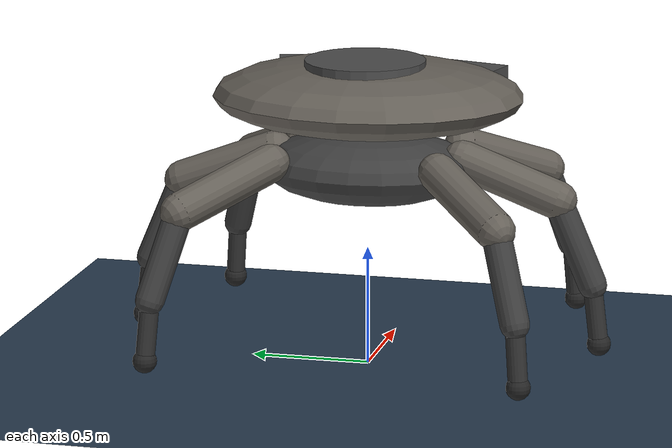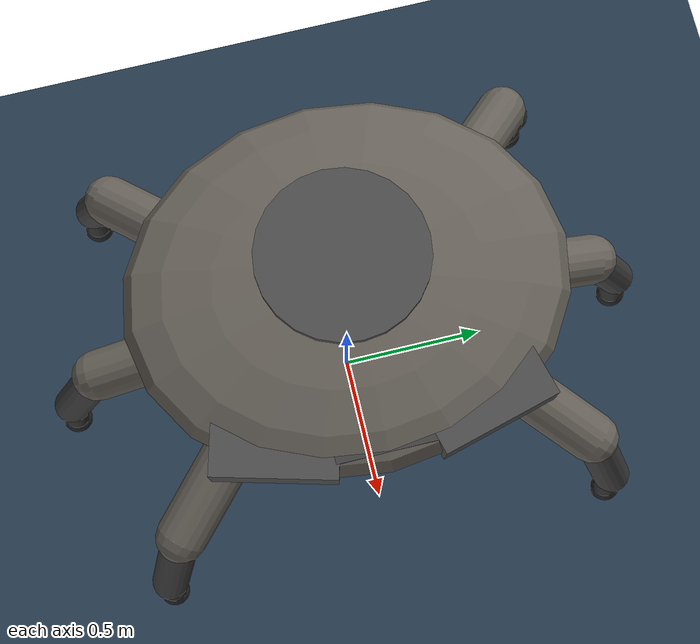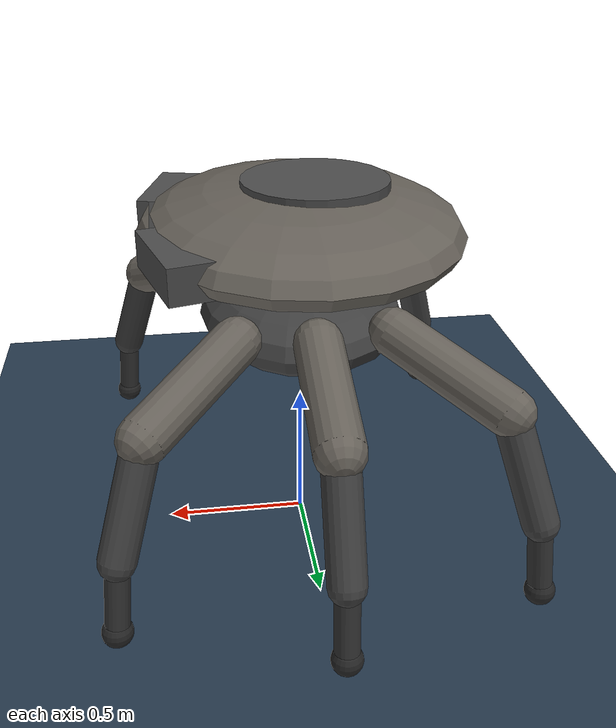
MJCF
<mujoco model="queen">
  <compiler angle="degree" coordinate="local" inertiafromgeom="true"/>

  <option integrator="implicitfast" timestep="0.002" solver="Newton" iterations="200">
    <flag filterparent="enable"/>
  </option>

  <visual>
    <global offwidth="1200" offheight="800"/>
  </visual>

  <custom>
    <numeric data="0.0 0.0 0.75 1.0 0.0 0.0 0.0  0 0 0  0 0 0  0 0 0  0 0 0  0 0 0  0 0 0" name="init_qpos"/>
  </custom>

  <default>
    <joint armature="1" damping="1" limited="true"/>
    <default class="knee_ankle">
      <joint armature="2" damping="10"/>
    </default>
    <geom conaffinity="0" condim="3" density="10.0" friction="1 0.5 0.5" margin="0.01" rgba="0.5 0.5 0.5 1"/>
  </default>

  <asset>
    <texture builtin="gradient" height="100" rgb1="1 1 1" rgb2="0.6 0.6 0.8" type="skybox" width="100"/>
    <texture builtin="checker" height="100" name="texplane" rgb1="0.2 0.3 0.4" rgb2="0.1 0.15 0.2" type="2d" width="100"/>
    <material name="MatPlane" reflectance="0.5" shininess="1" specular="1" texrepeat="60 60" texture="texplane"/>
    <material name="base_mat" rgba="0.25 0.25 0.25 1" specular="0.7" shininess="0.4"/>
    <material name="head_mat" rgba="0.30 0.30 0.30 1" specular="0.9" shininess="0.6"/>
    <material name="armor_mat" rgba="0.4 0.38 0.35 1" specular="0.8" shininess="0.5"/>
    <material name="leg_mat" rgba="0.20 0.20 0.20 1" specular="0.6" shininess="0.3"/>
    <material name="joint_glow" rgba="0.85 0.7 0.15 1" emission="0.5"/>
    <material name="eye_mat" rgba="0.2 0.8 1.0 1" emission="0.8"/>
    <material name="foot_mat" rgba="0.15 0.15 0.15 1" specular="0.5"/>
  </asset>

  <worldbody>
    <light cutoff="100" diffuse="1 1 1" dir="0 0 -1.3" directional="true" exponent="1" pos="0 0 1.3" specular="0.1 0.1 0.1"/>
    <geom conaffinity="1" condim="3" material="MatPlane" name="floor" pos="0 0 0" size="40 40 40" type="plane"/>

    <body name="torso" pos="0 0 0.90">
      <camera name="track" mode="trackcom" pos="0 -7 3" xyaxes="1 0 0 0 0.5 1"/>
      <joint armature="0" damping="0" limited="false" margin="0.01" name="root" pos="0 0 0" type="free"/>
      <site name="torso_site" pos="0 0 0" size="0.01"/>

      <geom name="chassis" type="ellipsoid" size="0.35 0.45 0.15" pos="0 0 -0.05" material="base_mat"/>
      <geom name="carapace_main" type="ellipsoid" size="0.55 0.65 0.15" pos="0.0 0 0.25" material="armor_mat" contype="0" conaffinity="0" mass="10.0"/>
      <geom name="carapace_top" type="cylinder" size="0.25 0.03" pos="-0.05 0 0.38" material="head_mat" contype="0" conaffinity="0" mass="0"/>

      <geom name="vent_housing_l" type="box" size="0.10 0.18 0.06" pos="0.40 0.30 0.25" euler="0 0 15" material="head_mat" contype="0" conaffinity="0" mass="0"/>
      <geom name="vent_housing_r" type="box" size="0.10 0.18 0.06" pos="0.40 -0.30 0.25" euler="0 0 -15" material="head_mat" contype="0" conaffinity="0" mass="0"/>

      <geom name="eye_housing" type="box" size="0.05 0.15 0.06" pos="0.45 0 0.25" material="base_mat" contype="0" conaffinity="0" mass="0"/>
      <geom name="eye_lens" type="cylinder" size="0.04 0.02" pos="0.50 0 0.25" euler="0 90 0" material="eye_mat" contype="0" conaffinity="0" mass="0"/>

      <body name="l1_upper" pos="0.25 0.35 0">
        <joint name="l1_hip" type="hinge" axis="0 0 1" range="-30 30" pos="0 0 0"/>
        <geom name="l1_upper_geom" fromto="0 0 0 0.30 0.30 -0.15" size="0.08" type="capsule" material="armor_mat"/>
        <geom name="l1_hip_glow" type="cylinder" size="0.05 0.02" pos="0 0 0" material="joint_glow" contype="0" conaffinity="0" mass="0"/>
        <body name="l1_middle" pos="0.30 0.30 -0.15">
          <joint name="l1_knee" class="knee_ankle" type="hinge" axis="-1 1 0" range="-80 0" pos="0 0 0"/>
          <geom name="l1_middle_geom" fromto="0 0 0 0.10 0.10 -0.35" size="0.06" type="capsule" material="base_mat"/>
          <geom name="l1_knee_glow" type="cylinder" size="0.045 0.02" pos="0 0 0" euler="0 45 0" material="joint_glow" contype="0" conaffinity="0" mass="0"/>
          <body name="l1_lower" pos="0.10 0.10 -0.35">
            <joint name="l1_ankle" class="knee_ankle" type="hinge" axis="-1 1 0" range="0 70" pos="0 0 0"/>
            <geom name="l1_lower_geom" fromto="0 0 0 0.02 0.02 -0.25" size="0.04" type="capsule" material="leg_mat"/>
            <geom name="l1_ankle_glow" type="cylinder" size="0.035 0.02" pos="0 0 0" euler="0 45 0" material="joint_glow" contype="0" conaffinity="0" mass="0"/>
            <body name="l1_foot" pos="0.02 0.02 -0.25">
              <geom name="l1_foot_geom" type="sphere" size="0.05" material="foot_mat"/>
            </body>
          </body>
        </body>
      </body>

      <body name="l2_upper" pos="0 0.40 0">
        <joint name="l2_hip" type="hinge" axis="0 0 1" range="-30 30" pos="0 0 0"/>
        <geom name="l2_upper_geom" fromto="0 0 0 0 0.40 -0.15" size="0.08" type="capsule" material="armor_mat"/>
        <geom name="l2_hip_glow" type="cylinder" size="0.05 0.02" pos="0 0 0" material="joint_glow" contype="0" conaffinity="0" mass="0"/>
        <body name="l2_middle" pos="0 0.40 -0.15">
          <joint name="l2_knee" class="knee_ankle" type="hinge" axis="-1 0 0" range="-80 0" pos="0 0 0"/>
          <geom name="l2_middle_geom" fromto="0 0 0 0 0.15 -0.35" size="0.06" type="capsule" material="base_mat"/>
          <geom name="l2_knee_glow" type="cylinder" size="0.045 0.02" pos="0 0 0" euler="0 90 0" material="joint_glow" contype="0" conaffinity="0" mass="0"/>
          <body name="l2_lower" pos="0 0.15 -0.35">
            <joint name="l2_ankle" class="knee_ankle" type="hinge" axis="-1 0 0" range="0 100" pos="0 0 0"/>
            <geom name="l2_lower_geom" fromto="0 0 0 0 0.03 -0.25" size="0.04" type="capsule" material="leg_mat"/>
            <geom name="l2_ankle_glow" type="cylinder" size="0.035 0.02" pos="0 0 0" euler="0 90 0" material="joint_glow" contype="0" conaffinity="0" mass="0"/>
            <body name="l2_foot" pos="0 0.03 -0.25">
              <geom name="l2_foot_geom" type="sphere" size="0.05" material="foot_mat"/>
            </body>
          </body>
        </body>
      </body>

      <body name="l3_upper" pos="-0.25 0.35 0">
        <joint name="l3_hip" type="hinge" axis="0 0 1" range="-30 30" pos="0 0 0"/>
        <geom name="l3_upper_geom" fromto="0 0 0 -0.30 0.30 -0.15" size="0.08" type="capsule" material="armor_mat"/>
        <geom name="l3_hip_glow" type="cylinder" size="0.05 0.02" pos="0 0 0" material="joint_glow" contype="0" conaffinity="0" mass="0"/>
        <body name="l3_middle" pos="-0.30 0.30 -0.15">
          <joint name="l3_knee" class="knee_ankle" type="hinge" axis="1 1 0" range="0 80" pos="0 0 0"/>
          <geom name="l3_middle_geom" fromto="0 0 0 -0.10 0.10 -0.35" size="0.06" type="capsule" material="base_mat"/>
          <geom name="l3_knee_glow" type="cylinder" size="0.045 0.02" pos="0 0 0" euler="0 -45 0" material="joint_glow" contype="0" conaffinity="0" mass="0"/>
          <body name="l3_lower" pos="-0.10 0.10 -0.35">
            <joint name="l3_ankle" class="knee_ankle" type="hinge" axis="1 1 0" range="-70 0" pos="0 0 0"/>
            <geom name="l3_lower_geom" fromto="0 0 0 -0.02 0.02 -0.25" size="0.04" type="capsule" material="leg_mat"/>
            <geom name="l3_ankle_glow" type="cylinder" size="0.035 0.02" pos="0 0 0" euler="0 -45 0" material="joint_glow" contype="0" conaffinity="0" mass="0"/>
            <body name="l3_foot" pos="-0.02 0.02 -0.25">
              <geom name="l3_foot_geom" type="sphere" size="0.05" material="foot_mat"/>
            </body>
          </body>
        </body>
      </body>

      <body name="r1_upper" pos="0.25 -0.35 0">
        <joint name="r1_hip" type="hinge" axis="0 0 1" range="-30 30" pos="0 0 0"/>
        <geom name="r1_upper_geom" fromto="0 0 0 0.30 -0.30 -0.15" size="0.08" type="capsule" material="armor_mat"/>
        <geom name="r1_hip_glow" type="cylinder" size="0.05 0.02" pos="0 0 0" material="joint_glow" contype="0" conaffinity="0" mass="0"/>
        <body name="r1_middle" pos="0.30 -0.30 -0.15">
          <joint name="r1_knee" class="knee_ankle" type="hinge" axis="1 1 0" range="-80 0" pos="0 0 0"/>
          <geom name="r1_middle_geom" fromto="0 0 0 0.10 -0.10 -0.35" size="0.06" type="capsule" material="base_mat"/>
          <geom name="r1_knee_glow" type="cylinder" size="0.045 0.02" pos="0 0 0" euler="0 -45 0" material="joint_glow" contype="0" conaffinity="0" mass="0"/>
          <body name="r1_lower" pos="0.10 -0.10 -0.35">
            <joint name="r1_ankle" class="knee_ankle" type="hinge" axis="1 1 0" range="0 70" pos="0 0 0"/>
            <geom name="r1_lower_geom" fromto="0 0 0 0.02 -0.02 -0.25" size="0.04" type="capsule" material="leg_mat"/>
            <geom name="r1_ankle_glow" type="cylinder" size="0.035 0.02" pos="0 0 0" euler="0 -45 0" material="joint_glow" contype="0" conaffinity="0" mass="0"/>
            <body name="r1_foot" pos="0.02 -0.02 -0.25">
              <geom name="r1_foot_geom" type="sphere" size="0.05" material="foot_mat"/>
            </body>
          </body>
        </body>
      </body>

      <body name="r2_upper" pos="0 -0.40 0">
        <joint name="r2_hip" type="hinge" axis="0 0 1" range="-30 30" pos="0 0 0"/>
        <geom name="r2_upper_geom" fromto="0 0 0 0 -0.40 -0.15" size="0.08" type="capsule" material="armor_mat"/>
        <geom name="r2_hip_glow" type="cylinder" size="0.05 0.02" pos="0 0 0" material="joint_glow" contype="0" conaffinity="0" mass="0"/>
        <body name="r2_middle" pos="0 -0.40 -0.15">
          <joint name="r2_knee" class="knee_ankle" type="hinge" axis="1 0 0" range="-80 0" pos="0 0 0"/>
          <geom name="r2_middle_geom" fromto="0 0 0 0 -0.15 -0.35" size="0.06" type="capsule" material="base_mat"/>
          <geom name="r2_knee_glow" type="cylinder" size="0.045 0.02" pos="0 0 0" euler="0 90 0" material="joint_glow" contype="0" conaffinity="0" mass="0"/>
          <body name="r2_lower" pos="0 -0.15 -0.35">
            <joint name="r2_ankle" class="knee_ankle" type="hinge" axis="1 0 0" range="0 100" pos="0 0 0"/>
            <geom name="r2_lower_geom" fromto="0 0 0 0 -0.03 -0.25" size="0.04" type="capsule" material="leg_mat"/>
            <geom name="r2_ankle_glow" type="cylinder" size="0.035 0.02" pos="0 0 0" euler="0 90 0" material="joint_glow" contype="0" conaffinity="0" mass="0"/>
            <body name="r2_foot" pos="0 -0.03 -0.25">
              <geom name="r2_foot_geom" type="sphere" size="0.05" material="foot_mat"/>
            </body>
          </body>
        </body>
      </body>

      <body name="r3_upper" pos="-0.25 -0.35 0">
        <joint name="r3_hip" type="hinge" axis="0 0 1" range="-30 30" pos="0 0 0"/>
        <geom name="r3_upper_geom" fromto="0 0 0 -0.30 -0.30 -0.15" size="0.08" type="capsule" material="armor_mat"/>
        <geom name="r3_hip_glow" type="cylinder" size="0.05 0.02" pos="0 0 0" material="joint_glow" contype="0" conaffinity="0" mass="0"/>
        <body name="r3_middle" pos="-0.30 -0.30 -0.15">
          <joint name="r3_knee" class="knee_ankle" type="hinge" axis="-1 1 0" range="0 80" pos="0 0 0"/>
          <geom name="r3_middle_geom" fromto="0 0 0 -0.10 -0.10 -0.35" size="0.06" type="capsule" material="base_mat"/>
          <geom name="r3_knee_glow" type="cylinder" size="0.045 0.02" pos="0 0 0" euler="0 45 0" material="joint_glow" contype="0" conaffinity="0" mass="0"/>
          <body name="r3_lower" pos="-0.10 -0.10 -0.35">
            <joint name="r3_ankle" class="knee_ankle" type="hinge" axis="-1 1 0" range="-70 0" pos="0 0 0"/>
            <geom name="r3_lower_geom" fromto="0 0 0 -0.02 -0.02 -0.25" size="0.04" type="capsule" material="leg_mat"/>
            <geom name="r3_ankle_glow" type="cylinder" size="0.035 0.02" pos="0 0 0" euler="0 45 0" material="joint_glow" contype="0" conaffinity="0" mass="0"/>
            <body name="r3_foot" pos="-0.02 -0.02 -0.25">
              <geom name="r3_foot_geom" type="sphere" size="0.05" material="foot_mat"/>
            </body>
          </body>
        </body>
      </body>

    </body>
  </worldbody>

  <contact>
    <exclude body1="torso" body2="l1_upper"/>
    <exclude body1="torso" body2="l2_upper"/>
    <exclude body1="torso" body2="l3_upper"/>
    <exclude body1="torso" body2="r1_upper"/>
    <exclude body1="torso" body2="r2_upper"/>
    <exclude body1="torso" body2="r3_upper"/>
  </contact>

  <actuator>
    <motor joint="l1_hip"   ctrlrange="-1 1" ctrllimited="true" gear="120"/>
    <motor joint="l1_knee"  ctrlrange="-1 1" ctrllimited="true" gear="120"/>
    <motor joint="l1_ankle" ctrlrange="-1 1" ctrllimited="true" gear="120"/>

    <motor joint="l2_hip"   ctrlrange="-1 1" ctrllimited="true" gear="120"/>
    <motor joint="l2_knee"  ctrlrange="-1 1" ctrllimited="true" gear="120"/>
    <motor joint="l2_ankle" ctrlrange="-1 1" ctrllimited="true" gear="120"/>

    <motor joint="l3_hip"   ctrlrange="-1 1" ctrllimited="true" gear="120"/>
    <motor joint="l3_knee"  ctrlrange="-1 1" ctrllimited="true" gear="120"/>
    <motor joint="l3_ankle" ctrlrange="-1 1" ctrllimited="true" gear="120"/>

    <motor joint="r1_hip"   ctrlrange="-1 1" ctrllimited="true" gear="120"/>
    <motor joint="r1_knee"  ctrlrange="-1 1" ctrllimited="true" gear="120"/>
    <motor joint="r1_ankle" ctrlrange="-1 1" ctrllimited="true" gear="120"/>

    <motor joint="r2_hip"   ctrlrange="-1 1" ctrllimited="true" gear="120"/>
    <motor joint="r2_knee"  ctrlrange="-1 1" ctrllimited="true" gear="120"/>
    <motor joint="r2_ankle" ctrlrange="-1 1" ctrllimited="true" gear="120"/>

    <motor joint="r3_hip"   ctrlrange="-1 1" ctrllimited="true" gear="120"/>
    <motor joint="r3_knee"  ctrlrange="-1 1" ctrllimited="true" gear="120"/>
    <motor joint="r3_ankle" ctrlrange="-1 1" ctrllimited="true" gear="120"/>
  </actuator>

  <sensor>
    <jointpos name="l1_hip_pos" joint="l1_hip"/>
    <jointpos name="l1_knee_pos" joint="l1_knee"/>
    <jointpos name="l1_ankle_pos" joint="l1_ankle"/>

    <jointpos name="l2_hip_pos" joint="l2_hip"/>
    <jointpos name="l2_knee_pos" joint="l2_knee"/>
    <jointpos name="l2_ankle_pos" joint="l2_ankle"/>

    <jointpos name="l3_hip_pos" joint="l3_hip"/>
    <jointpos name="l3_knee_pos" joint="l3_knee"/>
    <jointpos name="l3_ankle_pos" joint="l3_ankle"/>

    <jointpos name="r1_hip_pos" joint="r1_hip"/>
    <jointpos name="r1_knee_pos" joint="r1_knee"/>
    <jointpos name="r1_ankle_pos" joint="r1_ankle"/>

    <jointpos name="r2_hip_pos" joint="r2_hip"/>
    <jointpos name="r2_knee_pos" joint="r2_knee"/>
    <jointpos name="r2_ankle_pos" joint="r2_ankle"/>

    <jointpos name="r3_hip_pos" joint="r3_hip"/>
    <jointpos name="r3_knee_pos" joint="r3_knee"/>
    <jointpos name="r3_ankle_pos" joint="r3_ankle"/>

    <jointvel name="l1_hip_vel" joint="l1_hip"/>
    <jointvel name="l1_knee_vel" joint="l1_knee"/>
    <jointvel name="l1_ankle_vel" joint="l1_ankle"/>

    <jointvel name="l2_hip_vel" joint="l2_hip"/>
    <jointvel name="l2_knee_vel" joint="l2_knee"/>
    <jointvel name="l2_ankle_vel" joint="l2_ankle"/>

    <jointvel name="l3_hip_vel" joint="l3_hip"/>
    <jointvel name="l3_knee_vel" joint="l3_knee"/>
    <jointvel name="l3_ankle_vel" joint="l3_ankle"/>

    <jointvel name="r1_hip_vel" joint="r1_hip"/>
    <jointvel name="r1_knee_vel" joint="r1_knee"/>
    <jointvel name="r1_ankle_vel" joint="r1_ankle"/>

    <jointvel name="r2_hip_vel" joint="r2_hip"/>
    <jointvel name="r2_knee_vel" joint="r2_knee"/>
    <jointvel name="r2_ankle_vel" joint="r2_ankle"/>

    <jointvel name="r3_hip_vel" joint="r3_hip"/>
    <jointvel name="r3_knee_vel" joint="r3_knee"/>
    <jointvel name="r3_ankle_vel" joint="r3_ankle"/>

    <accelerometer name="torso_accel" site="torso_site"/>
    <gyro name="torso_gyro" site="torso_site"/>
  </sensor>
</mujoco>
